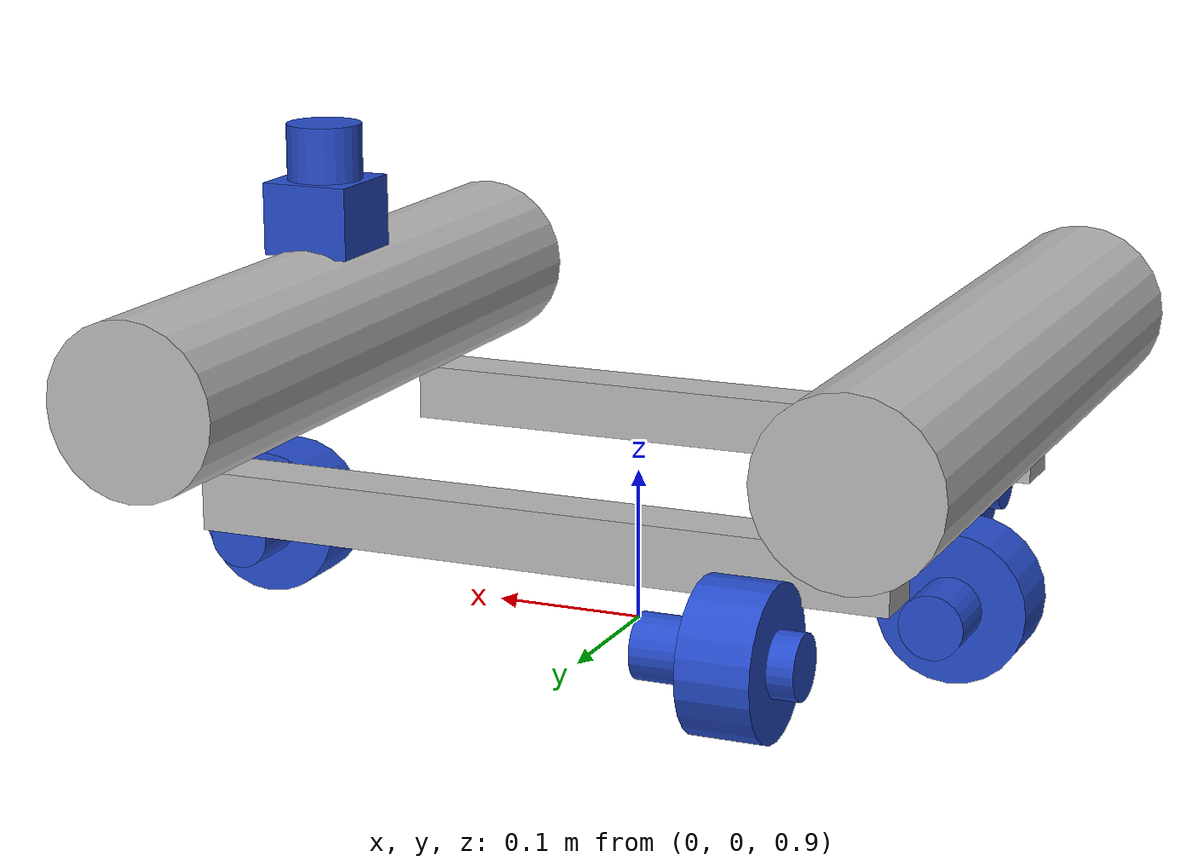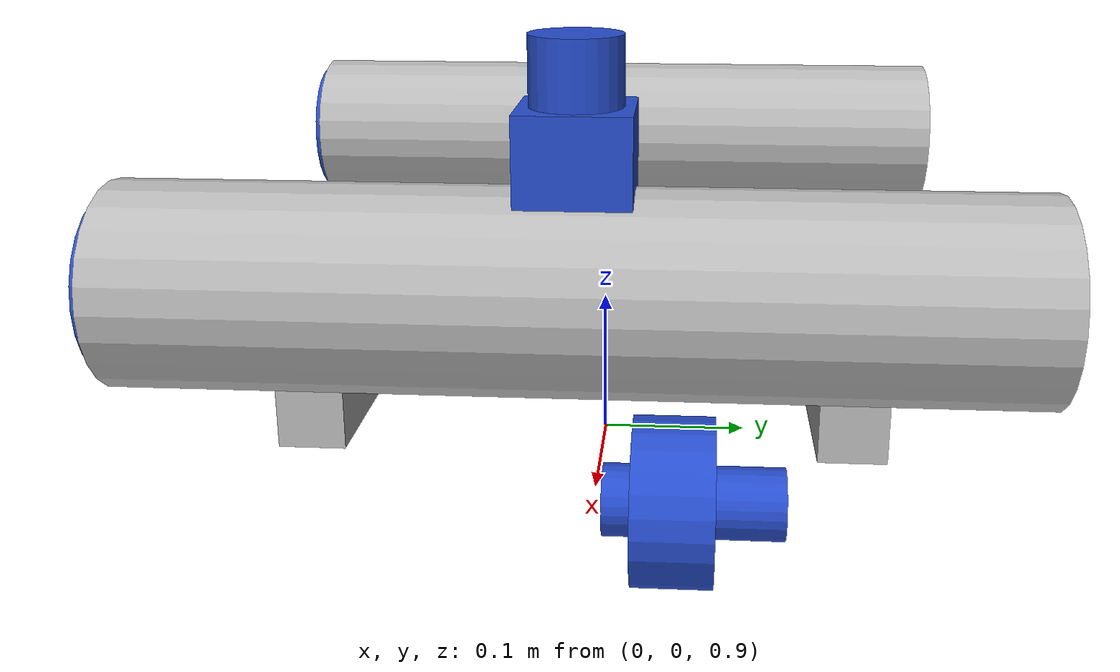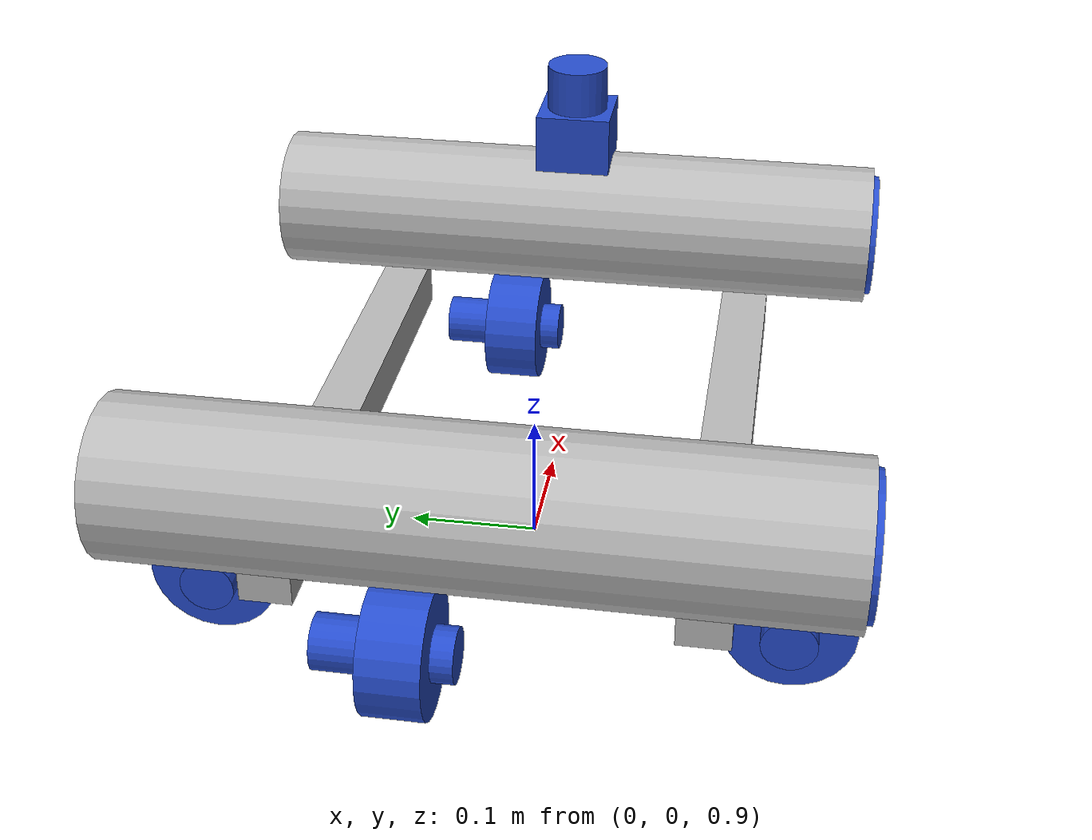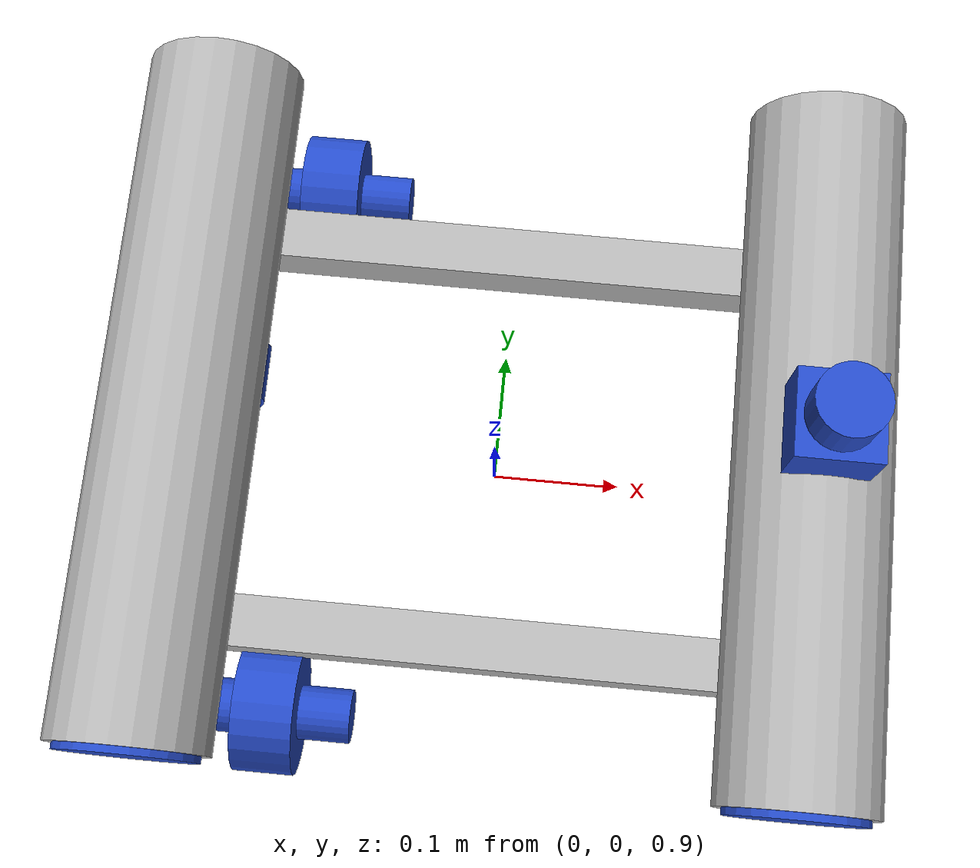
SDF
<sdf version="1.6">
 <world name="underwater">
  <light name="sun" type="directional">
   <pose>0 0 10 0 -0 0</pose>
   <diffuse>0.8 0.8 0.8 1</diffuse>
   <specular>0.2 0.2 0.2 1</specular>
   <attenuation>
    <range>1000</range>
    <constant>0.9</constant>
    <linear>0.01</linear>
    <quadratic>0.001</quadratic>
   </attenuation>
   <direction>-0.5 0.1 -0.9</direction>
  </light>
  <plugin name="freefloating_gazebo_fluid" filename="libfreefloating_gazebo_fluid.so">
   <descriptionParam>robot_description</descriptionParam>
   <fluidTopic>current</fluidTopic>
   <alwaysOn>1</alwaysOn>
   <surface>0 0 0</surface>
   <updateRate>.001</updateRate>
  </plugin>
  <gravity>0 0 -9.8</gravity>
  <magnetic_field>6e-06 2.3e-05 -4.2e-05</magnetic_field>
  <atmosphere type="adiabatic"/>
  <physics name="default_physics" default="0" type="ode">
   <max_step_size>0.001</max_step_size>
   <real_time_factor>1</real_time_factor>
   <real_time_update_rate>1000</real_time_update_rate>
  </physics>
  <scene><ambient>0.4 0.4 0.4 1</ambient><background>0.7 0.7 0.7 1</background><shadows>1</shadows></scene>
  <spherical_coordinates>
   <surface_model>EARTH_WGS84</surface_model>
   <latitude_deg>0</latitude_deg>
   <longitude_deg>0</longitude_deg>
   <elevation>0</elevation>
   <heading_deg>0</heading_deg>
  </spherical_coordinates>
  <model name="mallard">
   <link name="base_link">
    <inertial>
     <pose>0.008227 -0.003656 -0.013195 0 -0 0</pose>
     <mass>10.94</mass>
     <inertia>
      <ixx>0.18948</ixx>
      <ixy>0.00642093</ixy>
      <ixz>-0.0129112</ixz>
      <iyy>0.281161</iyy>
      <iyz>0.00356781</iyz>
      <izz>0.431538</izz>
     </inertia>
    </inertial>
    <collision name="base_link_fixed_joint_lump__mallard_box_collision">
     <pose>0 0 0.057 0 -0 0</pose>
     <geometry><box><size>0.564 0.5 0.152</size></box></geometry>
    </collision>
    <collision name="base_link_fixed_joint_lump__lidar_body_only_collision_1">
     <pose>0.225 0 0.152 0 -0 0</pose>
     <geometry><box><size>0.06 0.061 0.048</size></box></geometry>
    </collision>
    <collision name="base_link_fixed_joint_lump__lidar_body_only_collision_2">
     <pose>0.225 0 0.2 0 -0 0</pose>
     <geometry><cylinder><length>0.037</length><radius>0.025</radius></cylinder></geometry>
    </collision>
    <visual name="base_link_fixed_joint_lump__r_channel_visual_visual">
     <pose>0 -0.15 0 0 -0 0</pose>
     <geometry><box><size>0.45 0.038 0.038</size></box></geometry>
    </visual>
    <visual name="base_link_fixed_joint_lump__l_channel_visual_visual_1">
     <pose>0 0.15 0 0 -0 0</pose>
     <geometry><box><size>0.45 0.038 0.038</size></box></geometry>
    </visual>
    <visual name="base_link_fixed_joint_lump__front_tube_visual_visual_2">
     <pose>0.225 0 0.076 1.5707 -0 0</pose>
     <geometry><cylinder><length>0.5</length><radius>0.057</radius></cylinder></geometry>
    </visual>
    <visual name="base_link_fixed_joint_lump__rear_tube_visual_visual_3">
     <pose>-0.225 0 0.076 1.5707 -0 0</pose>
     <geometry><cylinder><length>0.5</length><radius>0.057</radius></cylinder></geometry>
    </visual>
    <visual name="base_link_fixed_joint_lump__ballast_1_visual_4">
     <pose>0.225 -0.25 0.076 1.5708 -0 0</pose>
     <geometry><cylinder><length>0.01</length><radius>0.05</radius></cylinder></geometry>
     <material>
      <script><name>Gazebo/Blue</name><uri>file://media/materials/scripts/gazebo.material</uri></script>
     </material>
    </visual>
    <visual name="base_link_fixed_joint_lump__ballast_2_visual_5">
     <pose>-0.225 -0.25 0.076 1.5708 -0 0</pose>
     <geometry><cylinder><length>0.01</length><radius>0.05</radius></cylinder></geometry>
     <material>
      <script><name>Gazebo/Blue</name><uri>file://media/materials/scripts/gazebo.material</uri></script>
     </material>
    </visual>
    <visual name="base_link_fixed_joint_lump__lidar_body_only_visual_6">
     <pose>0.225 0 0.152 0 -0 0</pose>
     <geometry><box><size>0.06 0.061 0.048</size></box></geometry>
     <material>
      <script><name>Gazebo/Blue</name><uri>file://media/materials/scripts/gazebo.material</uri></script>
     </material>
    </visual>
    <visual name="base_link_fixed_joint_lump__lidar_body_only_visual_7">
     <pose>0.225 0 0.1945 0 -0 0</pose>
     <geometry><cylinder><length>0.037</length><radius>0.025</radius></cylinder></geometry>
     <material>
      <script><name>Gazebo/Blue</name><uri>file://media/materials/scripts/gazebo.material</uri></script>
     </material>
    </visual>
    <visual name="base_link_fixed_joint_lump__urg_lidar_visual_8">
     <pose>0.225 0 0.1945 0 -0 0</pose>
     <geometry><cylinder><length>0.01</length><radius>0.01</radius></cylinder></geometry>
     <material>
      <script><name>Gazebo/Blue</name><uri>file://media/materials/scripts/gazebo.material</uri></script>
     </material>
    </visual>
    <sensor name="head_hokuyo_sensor" type="ray">
     <visualize>1</visualize>
     <update_rate>15</update_rate>
     <ray>
      <scan>
       <horizontal>
        <samples>5</samples>
        <resolution>1</resolution>
        <min_angle>-1.5708</min_angle>
        <max_angle>1.5708</max_angle>
       </horizontal>
       <vertical><samples>1</samples><min_angle>0</min_angle><max_angle>0</max_angle></vertical>
      </scan>
      <range><min>0.01</min><max>10</max><resolution>0.005</resolution></range>
      <noise><type>none</type><mean>0</mean><stddev>0</stddev></noise>
     </ray>
     <plugin name="gazebo_ros_head_hokuyo_controller" filename="libgazebo_ros_laser.so">
      <robotNamespace>/</robotNamespace>
      <alwaysOn>1</alwaysOn>
      <update_rate>15</update_rate>
      <topicName>lidar/data</topicName>
      <frameName>lidar_body_only</frameName>
      <bodyName>lidar_body_only</bodyName>
     </plugin>
     <pose>0.225 0 0.1945 0 -0 0</pose>
    </sensor>
   </link>
   <link name="x_thr_left">
    <pose>-0.138 0.207 -0.041 3.14159 -1.57079 3.14159</pose>
    <inertial>
     <mass>0.3</mass>
     <inertia><ixx>0.001</ixx><ixy>0</ixy><ixz>0</ixz><iyy>0.001</iyy><iyz>0</iyz><izz>0.001</izz></inertia>
    </inertial>
    <visual name="x_thr_left_1_visual">
     <geometry><cylinder><length>0.1</length><radius>0.02</radius></cylinder></geometry>
     <material>
      <script><name>Gazebo/Blue</name><uri>file://media/materials/scripts/gazebo.material</uri></script>
     </material>
    </visual>
    <visual name="x_thr_left_2_visual_1">
     <pose>0 0 0.01125 0 -0 0</pose>
     <geometry><cylinder><length>0.045</length><radius>0.047</radius></cylinder></geometry>
     <material>
      <script><name>Gazebo/Blue</name><uri>file://media/materials/scripts/gazebo.material</uri></script>
     </material>
    </visual>
   </link>
   <joint name="x_thr_left" type="revolute">
    <child>x_thr_left</child>
    <parent>base_link</parent>
    <axis>
     <xyz>0 1 0</xyz>
     <limit><lower>-3.14159</lower><upper>3.14159</upper><effort>30</effort><velocity>5</velocity></limit>
     <dynamics>
      <damping>1</damping>
      <friction>0</friction>
      <spring_reference>0</spring_reference>
      <spring_stiffness>0</spring_stiffness>
     </dynamics>
     <use_parent_model_frame>1</use_parent_model_frame>
    </axis>
    <physics><ode><limit><cfm>0</cfm><erp>0.2</erp></limit></ode></physics>
   </joint>
   <link name="x_thr_right">
    <pose>-0.138 -0.207 -0.041 3.14159 -1.57079 3.14159</pose>
    <inertial>
     <mass>0.3</mass>
     <inertia><ixx>0.001</ixx><ixy>0</ixy><ixz>0</ixz><iyy>0.001</iyy><iyz>0</iyz><izz>0.001</izz></inertia>
    </inertial>
    <visual name="x_thr_right_1_visual">
     <geometry><cylinder><length>0.1</length><radius>0.02</radius></cylinder></geometry>
     <material>
      <script><name>Gazebo/Blue</name><uri>file://media/materials/scripts/gazebo.material</uri></script>
     </material>
    </visual>
    <visual name="x_thr_right_2_visual_1">
     <pose>0 0 0.01125 0 -0 0</pose>
     <geometry><cylinder><length>0.045</length><radius>0.047</radius></cylinder></geometry>
     <material>
      <script><name>Gazebo/Blue</name><uri>file://media/materials/scripts/gazebo.material</uri></script>
     </material>
    </visual>
   </link>
   <joint name="x_thr_right" type="revolute">
    <child>x_thr_right</child>
    <parent>base_link</parent>
    <axis>
     <xyz>0 1 0</xyz>
     <limit><lower>-3.14159</lower><upper>3.14159</upper><effort>30</effort><velocity>5</velocity></limit>
     <dynamics>
      <damping>1</damping>
      <friction>0</friction>
      <spring_reference>0</spring_reference>
      <spring_stiffness>0</spring_stiffness>
     </dynamics>
     <use_parent_model_frame>1</use_parent_model_frame>
    </axis>
    <physics><ode><limit><cfm>0</cfm><erp>0.2</erp></limit></ode></physics>
   </joint>
   <link name="y_thr_left">
    <pose>0.233 0.064 -0.041 -1.57079 1.57079 3.14159</pose>
    <inertial>
     <mass>0.3</mass>
     <inertia><ixx>0.001</ixx><ixy>0</ixy><ixz>0</ixz><iyy>0.001</iyy><iyz>0</iyz><izz>0.001</izz></inertia>
    </inertial>
    <visual name="y_thr_left_1_visual">
     <geometry><cylinder><length>0.1</length><radius>0.02</radius></cylinder></geometry>
     <material>
      <script><name>Gazebo/Blue</name><uri>file://media/materials/scripts/gazebo.material</uri></script>
     </material>
    </visual>
    <visual name="y_thr_left_2_visual_1">
     <pose>0 0 0.01125 0 -0 0</pose>
     <geometry><cylinder><length>0.045</length><radius>0.047</radius></cylinder></geometry>
     <material>
      <script><name>Gazebo/Blue</name><uri>file://media/materials/scripts/gazebo.material</uri></script>
     </material>
    </visual>
   </link>
   <joint name="y_thr_left" type="revolute">
    <child>y_thr_left</child>
    <parent>base_link</parent>
    <axis>
     <xyz>1 0 -0</xyz>
     <limit><lower>-3.14159</lower><upper>3.14159</upper><effort>30</effort><velocity>5</velocity></limit>
     <dynamics>
      <damping>1</damping>
      <friction>0</friction>
      <spring_reference>0</spring_reference>
      <spring_stiffness>0</spring_stiffness>
     </dynamics>
     <use_parent_model_frame>1</use_parent_model_frame>
    </axis>
    <physics><ode><limit><cfm>0</cfm><erp>0.2</erp></limit></ode></physics>
   </joint>
   <link name="y_thr_right">
    <pose>-0.233 0.064 -0.041 -1.57079 1.57079 3.14159</pose>
    <inertial>
     <mass>0.3</mass>
     <inertia><ixx>0.001</ixx><ixy>0</ixy><ixz>0</ixz><iyy>0.001</iyy><iyz>0</iyz><izz>0.001</izz></inertia>
    </inertial>
    <visual name="y_thr_right_1_visual">
     <geometry><cylinder><length>0.1</length><radius>0.02</radius></cylinder></geometry>
     <material>
      <script><name>Gazebo/Blue</name><uri>file://media/materials/scripts/gazebo.material</uri></script>
     </material>
    </visual>
    <visual name="y_thr_right_2_visual_1">
     <pose>0 0 0.01125 0 -0 0</pose>
     <geometry><cylinder><length>0.045</length><radius>0.047</radius></cylinder></geometry>
     <material>
      <script><name>Gazebo/Blue</name><uri>file://media/materials/scripts/gazebo.material</uri></script>
     </material>
    </visual>
   </link>
   <joint name="y_thr_right" type="revolute">
    <child>y_thr_right</child>
    <parent>base_link</parent>
    <axis>
     <xyz>1 0 -0</xyz>
     <limit><lower>-3.14159</lower><upper>3.14159</upper><effort>30</effort><velocity>5</velocity></limit>
     <dynamics>
      <damping>1</damping>
      <friction>0</friction>
      <spring_reference>0</spring_reference>
      <spring_stiffness>0</spring_stiffness>
     </dynamics>
     <use_parent_model_frame>1</use_parent_model_frame>
    </axis>
    <physics><ode><limit><cfm>0</cfm><erp>0.2</erp></limit></ode></physics>
   </joint>
   <static>0</static>
   <plugin name="freefloating_gazebo_control" filename="libfreefloating_gazebo_control.so">
    <switchService>switch</switchService>
    <updateRate>100</updateRate>
    <link>base_link</link>
    <thruster><effort>2</effort><name>x_thr_left</name></thruster>
    <thruster><effort>2</effort><name>x_thr_right</name></thruster>
    <thruster><effort>2</effort><name>y_thr_left</name></thruster>
    <thruster><effort>2</effort><name>y_thr_right</name></thruster>
    <thruster><map>0 1 0 0 0 0</map><effort>2</effort></thruster>
    <robotNamespace>/mallard/</robotNamespace>
   </plugin>
   <pose>0 0 1 0 -0 0</pose>
  </model>
 </world>
</sdf>
